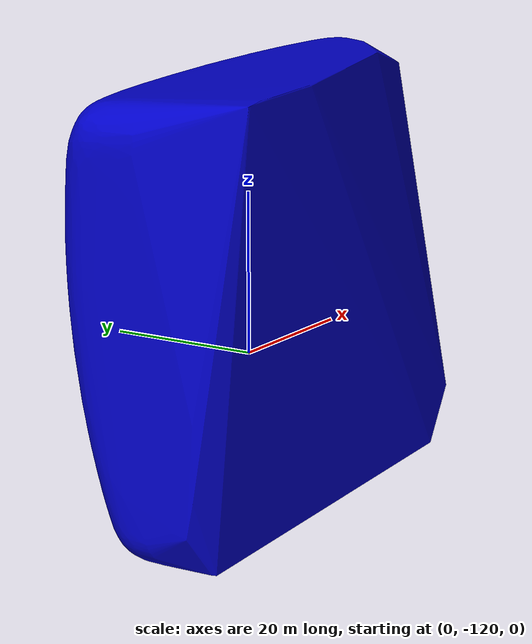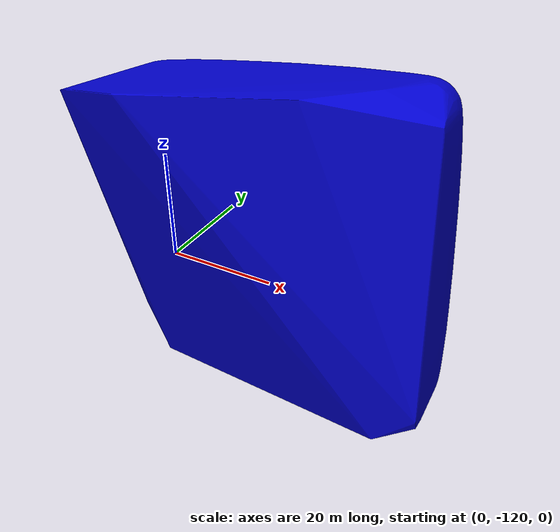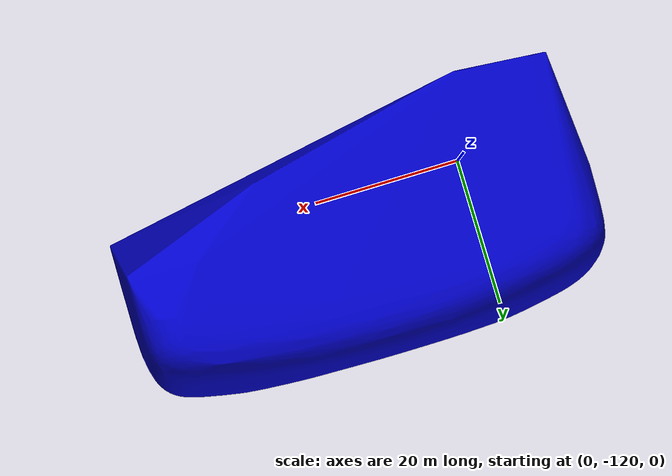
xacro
<?xml version="1.0"?>

<robot name="radio_model">

<link name="world"/>

<link name="radio_model_base_link">
    <visual>
      <geometry>
        <mesh filename="package://radio_model/radio_model_description/meshes/plug.stl"/>
      </geometry>

      <material name="blue">
        <color rgba="0 0 .8 1"/>
      </material>
    </visual>
</link>

<joint name="radio_model_base_joint" type="fixed">
	<parent link="world"/>
    	<child link="radio_model_base_link"/>
    	<origin xyz="0 0 0"/>
</joint>

</robot>
